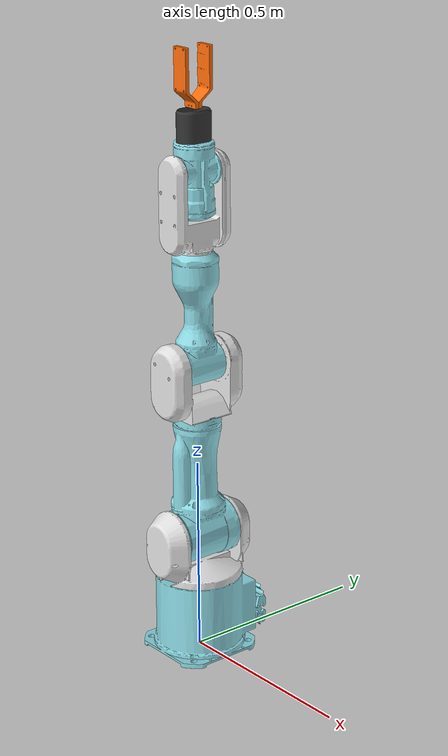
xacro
<?xml version="1.0" ?>

<robot name="pa10"
  xmlns:xacro="http://www.ros.org/wiki/xacro">

  <xacro:arg name="multiple" default="false"/>
  <!-- If multiple robots will be used -->
  <xacro:arg name="namespace" default=""/>
  <!-- namespace of the robot -->
  <xacro:arg name="interface" default="velocity"/>
  <!-- camera -->
  <xacro:arg name="enable_camera" default="false"/>
  <!-- color -->
  <xacro:arg name="color" default="default"/>

  <xacro:property name="is_multiple" value="$(arg multiple)" />
  <xacro:property name="nsp" value="$(arg namespace)" />
  <xacro:property name="HWInterface" value="$(arg interface)" />
  <xacro:property name="enable_camera_" value="$(arg enable_camera)" />

  <!-- PA10 Properties -->
  <xacro:include filename="$(find pa10_description)/urdf/pa10properties.xacro"/>
  <!-- Import all Gazebo-customization elements, including Gazebo colors -->
  <xacro:include filename="$(find pa10_description)/urdf/pa10csl.gazebo.urdf.xacro" />
  <!-- Import Rviz colors -->
  <xacro:include filename="$(find pa10_description)/urdf/materials.xacro" />
  <!-- Import Transmitions -->
  <xacro:include filename="$(find pa10_description)/urdf/arm.transmission.xacro"/>
  <!-- Import sensors -->
  <xacro:include filename="$(find pa10_description)/urdf/sensors.urdf.xacro"/>

  <!-- LINKS -->

  <link name="world"/>

  <link name="base_link">
    <visual>
      <origin rpy="0 0 3.14" xyz="0 0 0"/>
      <geometry>
        <mesh filename="package://pa10_description/pa10_stl/S1.stl" scale="1 1 1"/>
      </geometry>
      <material name="pa10_blue">
      </material>
    </visual>
    <collision>
      <origin rpy="0 0 3.14" xyz="0 0 0"/>
      <geometry>
        <mesh filename="package://pa10_description/pa10_stl_collision/S1_collision.stl" scale="1 1 1"/>
      </geometry>
    </collision>
    <inertial>
      <origin rpy="0 0 3.14" xyz="0 0 0.0"/>
      <mass value="${mass_shoulder}"/>
      <inertia ixx="0.1" ixy="0.0" ixz="0.0" iyy="0.1" iyz="0.0" izz="0.1"/>

    </inertial>
  </link>

  <link name="link_shoulder_1">
    <visual>
      <origin rpy="0 0 0" xyz="0 0 0.117"/>
      <geometry>
        <mesh filename="package://pa10_description/pa10_stl/S2.stl" scale="1 1 1"/>
      </geometry>
      <material name="">
        <color rgba="0.88 0.88 0.88 1.0"/>
      </material>
    </visual>
    <collision>
      <origin rpy="0 0 0" xyz="0 0 0.117"/>
      <geometry>
        <mesh filename="package://pa10_description/pa10_stl_collision/S2_collision.stl" scale="1 1 1"/>
      </geometry>
    </collision>
    <inertial>
      <mass value="${mass_shoulder}"/>
      <inertia ixx="0.1" ixy="0.0" ixz="0.0" iyy="0.1" iyz="0.0" izz="0.1"/>

    </inertial>
  </link>

  <link name="link_shoulder_2">
    <visual>
      <origin rpy="-1.57079 0 3.14159" xyz="0 0 0"/>
      <geometry>
        <mesh filename="package://pa10_description/pa10_stl/S3.stl" scale="1 1 1"/>
      </geometry>
      <material name="pa10_blue">
      </material>
    </visual>
    <collision>
      <origin rpy="-1.57079 0 3.14159" xyz="0 0 0"/>
      <geometry>
        <mesh filename="package://pa10_description/pa10_stl_collision/S3_collision.stl" scale="1 1 1"/>
      </geometry>
    </collision>
    <inertial>
      <origin rpy="-1.57079 0 3.14159" xyz="0 -0.0 0.0"/>
      <mass value="${mass_shoulder}"/>
      <inertia ixx="0.1" ixy="0.0" ixz="0.0" iyy="0.1" iyz="0.0" izz="0.1"/>
    </inertial>
  </link>

  <link name="link_shoulder_to_elbow">
    <inertial>
      <origin rpy="0 0 0" xyz="0 0 0.0"/>
      <mass value="0.5"/>
      <inertia ixx="0.1" ixy="0.0" ixz="0.0" iyy="0.1" iyz="0.0" izz="0.1"/>
    </inertial>
  </link>

  <link name="link_elbow_1">
    <visual>
      <origin rpy="0 0 0" xyz="0 0.0 0.133"/>
      <geometry>
        <mesh filename="package://pa10_description/pa10_stl/E1.stl" scale="1 1 1"/>
      </geometry>
      <material name="">
        <color rgba="0.88 0.88 0.88 1.0"/>
      </material>
    </visual>
    <collision>
      <origin rpy="0 0 0" xyz="0 0.0 0.133"/>
      <geometry>
        <mesh filename="package://pa10_description/pa10_stl_collision/E1_collision.stl" scale="1 1 1"/>
      </geometry>
    </collision>
    <inertial>
      <mass value="${mass_elbow}"/>
      <inertia ixx="0.1" ixy="0.0" ixz="0.0" iyy="0.1" iyz="0.0" izz="0.1"/>
    </inertial>
  </link>

  <link name="link_elbow_2">
    <visual>
      <origin rpy="1.57079 0 0" xyz="0 0.003 0"/>
      <geometry>
        <mesh filename="package://pa10_description/pa10_stl/E2.stl" scale="1 1 1"/>
      </geometry>
      <material name="pa10_blue">
      </material>
    </visual>
    <collision>
      <origin rpy="1.57079 0 0" xyz="0 0.003 0"/>
      <geometry>
        <mesh filename="package://pa10_description/pa10_stl_collision/E2_collision.stl" scale="1 1 1"/>
      </geometry>
    </collision>
    <inertial>
      <origin rpy="1.57079 0 0" xyz="0 -0.0 0"/>
      <mass value="${mass_elbow}"/>
      <inertia ixx="0.1" ixy="0.0" ixz="0.0" iyy="0.1" iyz="0.0" izz="0.1"/>

    </inertial>
  </link>

  <link name="link_wrist_1">
    <visual>
      <origin rpy="0 0 0" xyz="0 0 0.195"/>
      <geometry>
        <mesh filename="package://pa10_description/pa10_stl/W1.stl" scale="1 1 1"/>
      </geometry>
      <material name="">
        <color rgba="0.88 0.88 0.88 1.0"/>
      </material>
    </visual>
    <collision>
      <origin rpy="0 0 0" xyz="0 0 0.195"/>
      <geometry>
        <mesh filename="package://pa10_description/pa10_stl_collision/W1_collision.stl" scale="1 1 1"/>
      </geometry>
    </collision>
    <inertial>
      <mass value="${mass_wrist}"/>
      <inertia ixx="0.1" ixy="0.0" ixz="0.0" iyy="0.1" iyz="0.0" izz="0.1"/>
    </inertial>
  </link>

  <link name="link_wrist_2">
    <visual>
      <origin rpy="1.57079 0 0" xyz="0 0 0"/>
      <geometry>
        <mesh filename="package://pa10_description/pa10_stl/W2.stl" scale="1 1 1"/>
      </geometry>
      <material name="pa10_blue">
      </material>
    </visual>
    <collision>
      <origin rpy="1.57079 0 0" xyz="0 0 0"/>
      <geometry>
        <mesh filename="package://pa10_description/pa10_stl_collision/W2_collision.stl" scale="1 1 1"/>
      </geometry>
    </collision>
    <inertial>
      <origin rpy="1.57079 0 0" xyz="0 0 0"/>
      <mass value="${mass_wrist}"/>
      <inertia ixx="0.1" ixy="0.0" ixz="0.0" iyy="0.1" iyz="0.0" izz="0.1"/>
    </inertial>
  </link>

  <link name="link_wrist_3">
    <inertial>
      <origin rpy="0 0 0" xyz="0 0 0"/>
      <mass value="0.01"/>
      <inertia ixx="0.01" ixy="0.0" ixz="0.0" iyy="0.01" iyz="0.0" izz="0.01"/>
    </inertial>
  </link>

  <link name="link_ee_tool">
    <inertial>
      <origin rpy="0 0 0" xyz="0 0 0"/>
      <mass value="0.01"/>
      <inertia ixx="0.01" ixy="0.0" ixz="0.0" iyy="0.01" iyz="0.0" izz="0.01"/>
    </inertial>
  </link>

  <!-- GRIPPER LINKS -->

  <link name="link_gripper_base">
    <visual>
      <origin rpy="0 0 0" xyz="0 0 -0.045"/>
      <geometry>
        <mesh filename="package://pa10_description/gripper_stl/pa10_gripper_base.stl" scale="1 1 1"/>
      </geometry>
      <material name="">
        <color rgba="0.2 0.2 0.2 1.0"/>
      </material>
    </visual>
    <collision>
      <origin rpy="0 0 0" xyz="0 0 -0.045"/>
      <geometry>
        <mesh filename="package://pa10_description/gripper_stl/pa10_gripper_base.stl" scale="1 1 1"/>
      </geometry>
    </collision>
    <inertial>
      <mass value="${mass_gripper}"/>
      <inertia ixx="0.1" ixy="0.0" ixz="0.0" iyy="0.1" iyz="0.0" izz="0.1"/>
    </inertial>
  </link>

  <link name="link_finger_1">
    <visual>
      <origin rpy="-3.14159 -1.57079 0" xyz="-0.0225 0.075 -0.01"/>
      <geometry>
        <mesh filename="package://pa10_description/gripper_stl/finger.STL" scale="0.001 0.001 0.001"/>
      </geometry>
      <material name="">
        <color rgba="${255/255} ${108/255} ${10/255} 1.0"/>
      </material>
    </visual>
    <collision>
      <origin rpy="-3.14159 -1.57079 0" xyz="-0.0225 0.075 -0.01"/>
      <geometry>
        <mesh filename="package://pa10_description/gripper_stl/finger.STL" scale="0.001 0.001 0.001"/>
      </geometry>
    </collision>
    <inertial>
      <mass value="${mass_gripper}"/>
      <inertia ixx="0.01" ixy="0.0" ixz="0.0" iyy="0.01" iyz="0.0" izz="0.01"/>
    </inertial>
  </link>

  <link name="link_finger_2">
    <visual>
      <origin rpy="0 1.57079 0" xyz="-0.0225 -0.075 0.07"/>
      <geometry>
        <mesh filename="package://pa10_description/gripper_stl/finger_left.STL" scale="0.001 0.001 0.001"/>
      </geometry>
      <material name="">
        <color rgba="${255/255} ${108/255} ${10/255} 1.0"/>
      </material>
    </visual>
    <collision>
      <origin rpy="0 1.57079 0" xyz="-0.0225 -0.075 0.07"/>
      <geometry>
        <mesh filename="package://pa10_description/gripper_stl/finger_left.STL" scale="0.001 0.001 0.001"/>
      </geometry>
    </collision>
    <inertial>
      <mass value="${mass_gripper}"/>
      <inertia ixx="0.01" ixy="0.0" ixz="0.0" iyy="0.01" iyz="0.0" izz="0.01"/>

    </inertial>
  </link>

  <!--   JOINTS    -->

  <joint name="fixed" type="fixed">

    <!-- origin rpy="${-pi/2.0} 0 0" xyz="0 0 1.35"/ -->
    <origin rpy="0 0 0" xyz="0 0 0.0"/>
    <parent link="world"/>
    <child link="base_link"/>
  </joint>

  <joint name="S1" type="revolute">
    <origin rpy="0 0 0" xyz="0 0 0.2"/>
    <parent link="base_link"/>
    <child link="link_shoulder_1"/>
    <axis xyz="0 0 1"/>
    <limit effort="${joint_1_max_effort}" lower="${-joint_1_max_position}" upper="${joint_1_max_position}" velocity="${joint_1_max_velocity}"/>
    <dynamics damping="${joint_1_damping}" friction="${joint_1_friction}" />
  </joint>

  <joint name="S2" type="revolute">
    <origin rpy="-1.57079 0 0" xyz="0 0 0.117"/>
    <parent link="link_shoulder_1"/>
    <child link="link_shoulder_2"/>
    <axis xyz="0 0 1"/>
    <limit effort="${joint_2_max_effort}" lower="${-joint_2_max_position}" upper="${joint_2_max_position}" velocity="${joint_2_max_velocity}"/>
    <dynamics damping="${joint_2_damping}" friction="${joint_2_friction}" />

  </joint>

  <joint name="soldier_to_elbow_joint" type="fixed">
    <origin rpy="1.57079 0 0" xyz="0 0 0"/>
    <parent link="link_shoulder_2"/>
    <child link="link_shoulder_to_elbow"/>
  </joint>

  <joint name="E1" type="revolute">
    <origin rpy="0 0 0" xyz="0 0 0.317"/>
    <parent link="link_shoulder_to_elbow"/>
    <child link="link_elbow_1"/>
    <axis xyz="0 0 1"/>
    <limit effort="${joint_3_max_effort}" lower="${-joint_3_max_position}" upper="${joint_3_max_position}" velocity="${joint_3_max_velocity}"/>
    <dynamics damping="${joint_3_damping}" friction="${joint_3_friction}" />
  </joint>

  <joint name="E2" type="revolute">
    <origin rpy="-1.57079  0 0" xyz="0 0 0.133"/>
    <parent link="link_elbow_1"/>
    <child link="link_elbow_2"/>
    <axis xyz="0 0 1"/>
    <limit effort="${joint_4_max_effort}" lower="${-joint_4_max_position}" upper="${joint_4_max_position}" velocity="${joint_4_max_velocity}"/>
    <dynamics damping="${joint_4_damping}" friction="${joint_4_friction}" />
  </joint>

  <joint name="W1" type="revolute">
    <origin rpy="1.57079 0 0" xyz="0 -0.285 0 "/>
    <parent link="link_elbow_2"/>
    <child link="link_wrist_1"/>
    <axis xyz="0 0 1"/>
    <limit effort="${joint_5_max_effort}" lower="${-joint_5_max_position}" upper="${joint_5_max_position}" velocity="${joint_5_max_velocity}"/>
    <dynamics damping="${joint_5_damping}" friction="${joint_5_friction}" />
  </joint>

  <joint name="W2" type="revolute">
    <origin rpy="-1.57079 0 0" xyz="0 0 0.195"/>
    <parent link="link_wrist_1"/>
    <child link="link_wrist_2"/>
    <axis xyz="0 0 1"/>
    <limit effort="${joint_6_max_effort}" lower="${-joint_6_max_position}" upper="${joint_6_max_position}" velocity="${joint_6_max_velocity}"/>
    <dynamics damping="${joint_6_damping}" friction="${joint_6_friction}" />
  </joint>

  <joint name="W3" type="revolute">
    <origin rpy="1.57079 0 0" xyz="0 -0.07 0"/>
    <parent link="link_wrist_2"/>
    <child link="link_wrist_3"/>
    <axis xyz="0 0 1"/>
    <limit effort="${joint_7_max_effort}" lower="${-joint_7_max_position}" upper="${joint_7_max_position}" velocity="${joint_7_max_velocity}"/>
    <dynamics damping="${joint_7_damping}" friction="${joint_7_friction}" />
  </joint>

  <joint name="ee_tool_frame" type="fixed">
    <origin rpy="0 0 0" xyz="0 0 0.23"/>
    <parent link="link_wrist_3"/>
    <child link="link_ee_tool"/>
  </joint>

  <!-- GRIPPER JOINTS -->

  <joint name="gripper_base" type="fixed">
    <origin rpy="0 0 0" xyz="0 0 0.045"/>
    <parent link="link_wrist_3"/>
    <child link="link_gripper_base"/>
  </joint>

  <joint name="finger_joint_1" type="prismatic">
    <origin rpy="-1.57079 0 0" xyz="0 -0.03 0.11"/>
    <parent link="link_gripper_base"/>
    <child link="link_finger_1"/>
    <axis xyz="0 0 1"/>
    <limit effort="${joint_7_max_effort}" lower="-0.039" upper="0" velocity="1.0"/>
    <dynamics damping="${joint_finger_damping}" friction="${joint_finger_friction}" />

    <safety_controller k_position="20" k_velocity="20" soft_lower_limit="-0.035" soft_upper_limit="-0.002" />

  </joint>

  <joint name="finger_joint_2" type="prismatic">
    <origin rpy="1.57079 0 0" xyz="0 0.03 0.11"/>
    <parent link="link_gripper_base"/>
    <child link="link_finger_2"/>
    <axis xyz="0 0 1"/>
    <limit effort="${joint_7_max_effort}" lower="-0.039" upper="0" velocity="1.0"/>
    <dynamics damping="${joint_finger_damping}" friction="${joint_finger_friction}" />
    <safety_controller k_position="20" k_velocity="20" soft_lower_limit="-0.035" soft_upper_limit="-0.002" />
  </joint>

  <!--    TRANSMITIONS     -->

  <xacro:arm_simple_transmission name="S1" reduction="1" interface="${HWInterface}" />
  <xacro:arm_simple_transmission name="S2" reduction="1" interface="${HWInterface}"/>
  <xacro:arm_simple_transmission name="E1" reduction="1" interface="${HWInterface}"/>
  <xacro:arm_simple_transmission name="E2" reduction="1" interface="${HWInterface}"/>
  <xacro:arm_simple_transmission name="W1" reduction="1" interface="${HWInterface}"/>
  <xacro:arm_simple_transmission name="W2" reduction="1" interface="${HWInterface}"/>
  <xacro:arm_simple_transmission name="W3" reduction="1" interface="${HWInterface}"/>
  <xacro:arm_simple_transmission name="finger_joint_1" reduction="10" interface="velocity"/>
  <xacro:arm_simple_transmission name="finger_joint_2" reduction="10" interface="velocity"/>

  <!-- COLORS GAZEBO -->
  <xacro:gazebo_materials prefix="" color="$(arg color)" />
  <xacro:ft_sensor_plugin name="" joint_name="W3" noise="0.02" />

  <xacro:if value="$(arg enable_camera)">

    <xacro:depth_sensor prefix=""/>

    <joint name="kinect" type="fixed">
      <origin rpy="${-125.0*pi/180.0} 0 ${pi}" xyz="0.148 0.48 1.8"/>
      <parent link="base_link"/>
      <child link="kinect2_rgb_optical_frame"/>
    </joint>

  </xacro:if>

</robot>

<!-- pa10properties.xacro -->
<robot xmlns:xacro="http://www.ros.org/wiki/xacro">

    <!-- Not used yet -->
    <xacro:property name="inertia_height_shoulder" value="500"/>
    <xacro:property name="inertia_height_elbow" value="300"/>
    <xacro:property name="inertia_height_wrist" value="100"/>
    <xacro:property name="inertia_height_gripper" value="100"/>

    <!-- Mass -->
    <xacro:property name="mass_shoulder" value="0.5"/>
    <xacro:property name="mass_elbow" value="0.5"/>
    <xacro:property name="mass_wrist" value="0.01"/>
    <xacro:property name="mass_gripper" value="0.01"/>

    <xacro:property name="pi" value="3.1415926535897931" />
    <!-- JOINTS EFFORT LIMITS -->
    <!-- NOT THE ACTUAL VALUE -->
    <xacro:property name="arm_eps" value="0.02" />
    <xacro:property name="joint_1_max_effort" value="550.0"/>
    <xacro:property name="joint_2_max_effort" value="550.0"/>
    <xacro:property name="joint_3_max_effort" value="550.0"/>
    <xacro:property name="joint_4_max_effort" value="550.0"/>
    <xacro:property name="joint_5_max_effort" value="550.0"/>
    <xacro:property name="joint_6_max_effort" value="550.0"/>
    <xacro:property name="joint_7_max_effort" value="550.0"/>

    <!-- JOINTS POSITION LIMITS -->
    <!-- Real Values: [177, 94, 174, 137, 255, 165, 255] (deg)-->
    <xacro:property name="joint_1_max_position" value="${170.0 *pi/180.0}"/>
    <xacro:property name="joint_2_max_position" value="${90.0 *pi/180.0}"/>
    <xacro:property name="joint_3_max_position" value="${170.0 *pi/180.0}"/>
    <xacro:property name="joint_4_max_position" value="${130.0 *pi/180.0}"/>
    <xacro:property name="joint_5_max_position" value="${250.0 *pi/180.0}"/>
    <xacro:property name="joint_6_max_position" value="${160.0 *pi/180.0}"/>
    <xacro:property name="joint_7_max_position" value="${250.0 *pi/180.0}"/>

    <!-- JOINTS VELOCITIE LIMITS-->
    <!-- Real Values: [1, 1, 2, 2, 2, 2*pi, 2*pi] (rad/sec)-->
    <xacro:property name="joint_1_max_velocity" value="1.1"/>
    <xacro:property name="joint_2_max_velocity" value="1.1"/>
    <xacro:property name="joint_3_max_velocity" value="1.1"/>
    <xacro:property name="joint_4_max_velocity" value="1.1"/>
    <xacro:property name="joint_5_max_velocity" value="1.1"/>
    <xacro:property name="joint_6_max_velocity" value="${1.8*pi}"/>
    <xacro:property name="joint_7_max_velocity" value="${1.8*pi}"/>

    <!-- JOINT DYNAMICS DAMPING + FRICTION-->
    <!-- >> !! Not Real Values !! << -->
    <!-- DAMPING -->
    <xacro:property name="joint_1_damping" value="0.8"/>
    <xacro:property name="joint_2_damping" value="0.8"/>
    <xacro:property name="joint_3_damping" value="0.8"/>
    <xacro:property name="joint_4_damping" value="0.8"/>
    <xacro:property name="joint_5_damping" value="0.8"/>
    <xacro:property name="joint_6_damping" value="0.8"/>
    <xacro:property name="joint_7_damping" value="0.8"/>
    <xacro:property name="joint_finger_damping" value="0.8"/>

    <!-- FRICTION -->
    <xacro:property name="joint_1_friction" value="0.1"/>
    <xacro:property name="joint_2_friction" value="0.1"/>
    <xacro:property name="joint_3_friction" value="0.1"/>
    <xacro:property name="joint_4_friction" value="0.1"/>
    <xacro:property name="joint_5_friction" value="0.1"/>
    <xacro:property name="joint_6_friction" value="0.1"/>
    <xacro:property name="joint_7_friction" value="0.1"/>
    <xacro:property name="joint_finger_friction" value="0.2"/>

</robot>

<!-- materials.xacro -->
<robot xmlns:xacro="http://www.ros.org/wiki/xacro">

  <material name="black">
    <color rgba="0.0 0.0 0.0 1.0"/>
  </material>

  <material name="blue">
    <color rgba="0.0 0.0 0.8 1.0"/>
  </material>

  <material name="green">
    <color rgba="0.0 0.8 0.0 1.0"/>
  </material>

  <material name="grey">
    <color rgba="0.2 0.2 0.2 1.0"/>
  </material>

  <material name="orange">
    <color rgba="${255/255} ${108/255} ${10/255} 1.0"/>
  </material>

  <material name="brown">
    <color rgba="${222/255} ${207/255} ${195/255} 1.0"/>
  </material>

  <material name="pa10_blue">
    <color rgba="${140/255} ${217/255} ${227/255} 1.0"/>
  </material>

  <material name="red">
    <color rgba="0.8 0.0 0.0 1.0"/>
  </material>

  <material name="white">
    <color rgba="1.0 1.0 1.0 1.0"/>
  </material>

</robot>
